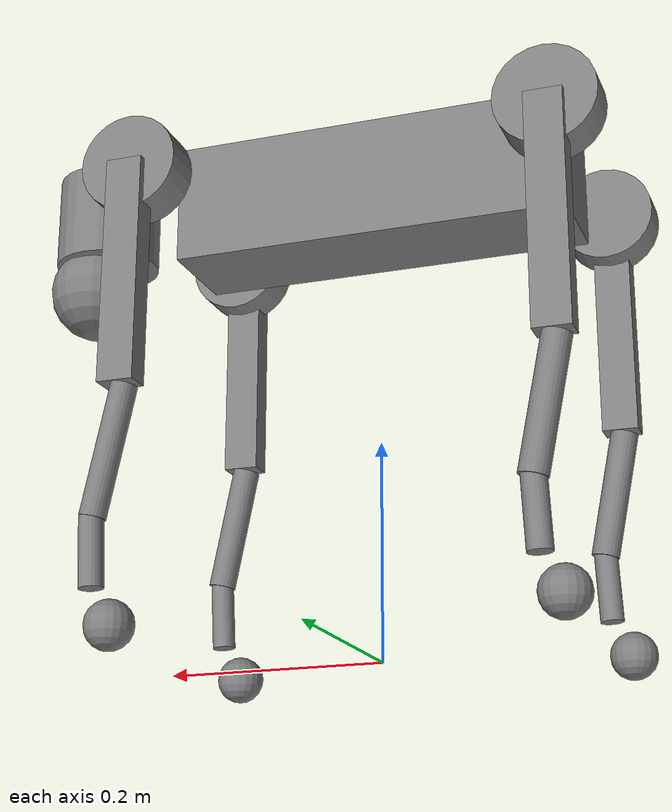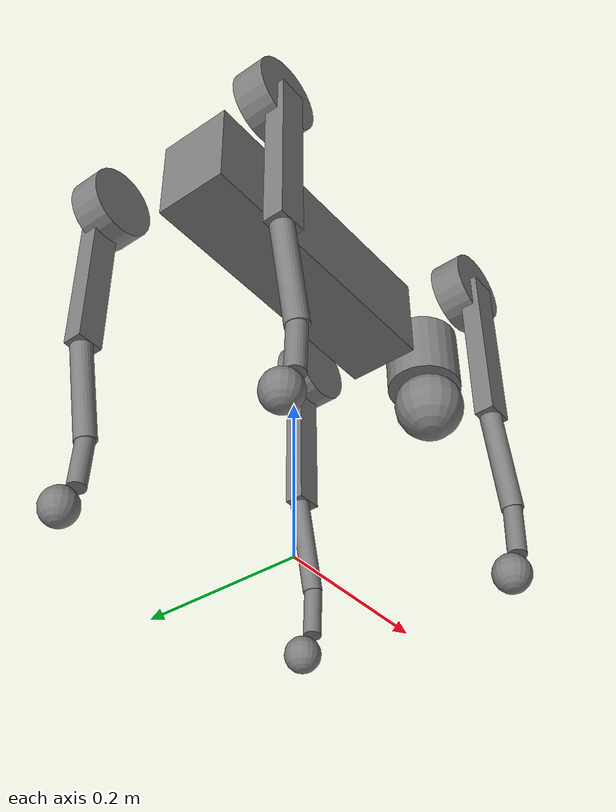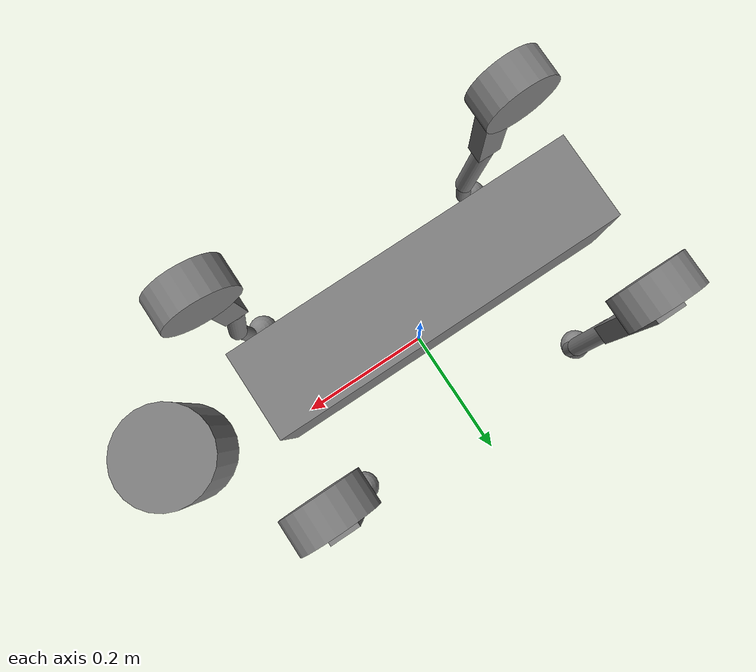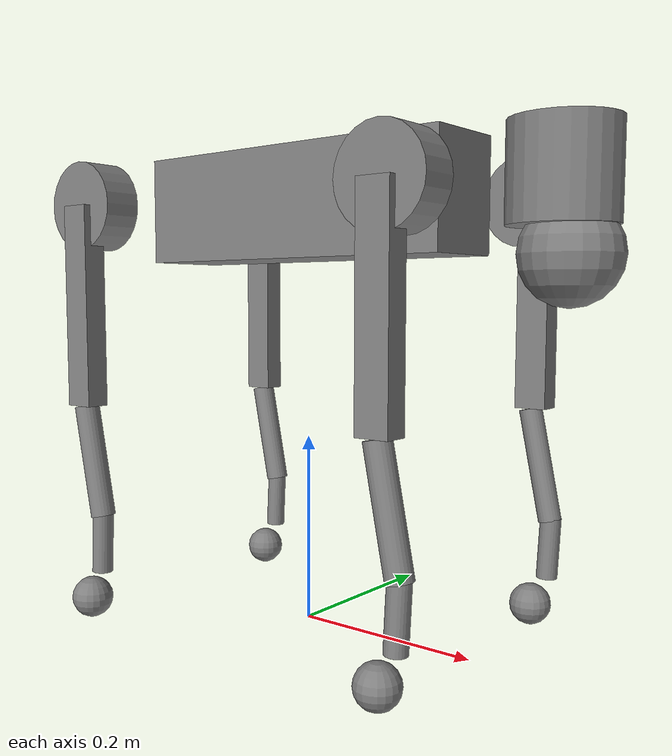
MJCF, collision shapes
<mujoco model="go2">
  <compiler angle="radian" meshdir="../meshes" autolimits="true" />

  <option cone="elliptic" impratio="100" />

  <default>
    <default class="go2">
      <geom friction="0.4" margin="0.001" condim="1" />
      <joint axis="0 1 0" damping="0.1" armature="0.01" frictionloss="0.2" />
      <motor ctrlrange="-23.7 23.7" />
      <default class="abduction">
        <joint axis="1 0 0" range="-1.0472 1.0472" />
      </default>
      <default class="hip">
        <default class="front_hip">
          <joint range="-1.5708 3.4907" />
        </default>
        <default class="back_hip">
          <joint range="-0.5236 4.5379" />
        </default>
      </default>
      <default class="knee">
        <joint range="-2.7227 -0.83776" />
        <motor ctrlrange="-45.43 45.43" />
      </default>
      <default class="visual">
        <geom type="mesh" contype="0" conaffinity="0" density="0" group="2" />
      </default>
      <default class="collision">
        <geom priority="1" condim="6" group="3" />
      </default>
      <site rgba="1 0 0 1" group="5" />
    </default>
  </default>

  <asset>
    <material name="metal" rgba=".9 .95 .95 1" />
    <material name="black" rgba="0 0 0 1" />
    <material name="white" rgba="1 1 1 1" />
    <material name="gray" rgba="0.671705 0.692426 0.774270 1" />

    <mesh file="base_0.obj" />
    <mesh file="base_1.obj" />
    <mesh file="base_2.obj" />
    <mesh file="base_3.obj" />
    <mesh file="base_4.obj" />
    <mesh file="hip_0.obj" />
    <mesh file="hip_1.obj" />
    <mesh file="thigh_0.obj" />
    <mesh file="thigh_1.obj" />
    <mesh file="thigh_mirror_0.obj" />
    <mesh file="thigh_mirror_1.obj" />
    <mesh file="calf_0.obj" />
    <mesh file="calf_1.obj" />
    <mesh file="calf_mirror_0.obj" />
    <mesh file="calf_mirror_1.obj" />
    <mesh file="foot.obj" />
  </asset>

  <worldbody>
    <body name="base_link" pos="0 0 0.445" childclass="go2">
      <inertial pos="0.021112 0 -0.005366" quat="-0.000543471 0.713435 -0.00173769 0.700719" mass="6.921" diaginertia="0.107027 0.0980771 0.0244531" />
      <freejoint name="floating_base_joint" />
      <geom mesh="base_0" material="black" class="visual" />
      <geom mesh="base_1" material="black" class="visual" />
      <geom mesh="base_2" material="black" class="visual" />
      <geom mesh="base_3" material="white" class="visual" />
      <geom mesh="base_4" material="gray" class="visual" />
      <geom name="base1_collision" size="0.1881 0.04675 0.057" type="box" class="collision" />
      <geom name="base2_collision" size="0.05 0.045" pos="0.285 0 0.01" type="cylinder" class="collision" />
      <geom name="base3_collision" size="0.047" pos="0.293 0 -0.06" type="sphere" class="collision" />
      <site name="imu" pos="-0.02557 0 0.04232" group="5" />
      <body name="FL_hip" pos="0.1934 0.0465 0">
        <inertial pos="-0.0054 0.00194 -0.000105" quat="0.497014 0.499245 0.505462 0.498237" mass="0.678" diaginertia="0.00088403 0.000596003 0.000479967" />
        <joint name="FL_hip_joint" axis="1 0 0" range="-1.0472 1.0472" />
        <geom mesh="hip_0" material="metal" class="visual" />
        <geom mesh="hip_1" material="gray" class="visual" />
        <geom name="FL_hip_collision" size="0.046 0.02" pos="0 0.08 0" quat="1 1 0 0" type="cylinder" class="collision" />
        <body name="FL_thigh" pos="0 0.0955 0">
          <inertial pos="-0.00374 -0.0223 -0.0327" quat="0.829533 0.0847635 -0.0200632 0.551623" mass="1.152" diaginertia="0.00594973 0.00584149 0.000878787" />
          <joint name="FL_thigh_joint" axis="0 1 0" range="-1.5708 3.4907" />
          <geom mesh="thigh_0" material="metal" class="visual" />
          <geom mesh="thigh_1" material="gray" class="visual" />
          <geom name="FL_thigh_collision" size="0.1065 0.01225 0.017" pos="0 0 -0.1065" quat="0.707107 0 0.707107 0" type="box" class="collision" />
          <body name="FL_calf" pos="0 0 -0.213">
            <inertial pos="0.00629595 -0.000622121 -0.141417" quat="0.710672 0.00154099 -0.00450087 0.703508" mass="0.241352" diaginertia="0.0014901 0.00146356 5.31397e-05" />
            <joint name="FL_calf_joint" axis="0 1 0" range="-2.7227 -0.83776" />
            <geom mesh="calf_0" material="gray" class="visual" />
            <geom mesh="calf_1" material="black" class="visual" />
            <geom name="FL_calf1_collision" size="0.012 0.06" pos="0.008 0 -0.06" quat="0.994493 0 -0.104807 0" type="cylinder" class="collision" />
            <geom name="FL_calf2_collision" size="0.011 0.0325" pos="0.02 0 -0.148" quat="0.999688 0 0.0249974 0" type="cylinder" class="collision" />
            <geom pos="0 0 -0.213" mesh="foot" class="visual" material="black" />
            <geom name="FL_foot_collision" pos="0 0 -0.213" type="sphere" size="0.022" class="collision" />
            <site name="FL" pos="0 0 -0.213" type="sphere" size="0.022" />
          </body>
        </body>
      </body>
      <body name="FR_hip" pos="0.1934 -0.0465 0">
        <inertial pos="-0.0054 -0.00194 -0.000105" quat="0.498237 0.505462 0.499245 0.497014" mass="0.678" diaginertia="0.00088403 0.000596003 0.000479967" />
        <joint name="FR_hip_joint" axis="1 0 0" range="-1.0472 1.0472" />
        <geom mesh="hip_0" material="metal" class="visual" quat="4.63268e-05 1 0 0" />
        <geom mesh="hip_1" material="gray" class="visual" quat="4.63268e-05 1 0 0" />
        <geom name="FR_hip_collision" size="0.046 0.02" pos="0 -0.08 0" quat="0.707107 0.707107 0 0" type="cylinder" class="collision" />
        <body name="FR_thigh" pos="0 -0.0955 0">
          <inertial pos="-0.00374 0.0223 -0.0327" quat="0.551623 -0.0200632 0.0847635 0.829533" mass="1.152" diaginertia="0.00594973 0.00584149 0.000878787" />
          <joint name="FR_thigh_joint" axis="0 1 0" range="-1.5708 3.4907" />
          <geom mesh="thigh_mirror_0" material="metal" class="visual" />
          <geom mesh="thigh_mirror_1" material="gray" class="visual" />
          <geom name="FR_thigh_collision" size="0.1065 0.01225 0.017" pos="0 0 -0.1065" quat="0.707107 0 0.707107 0" type="box" class="collision" />
          <body name="FR_calf" pos="0 0 -0.213">
            <inertial pos="0.00629595 0.000622121 -0.141417" quat="0.703508 -0.00450087 0.00154099 0.710672" mass="0.241352" diaginertia="0.0014901 0.00146356 5.31397e-05" />
            <joint name="FR_calf_joint" axis="0 1 0" range="-2.7227 -0.83776" />
            <geom mesh="calf_mirror_0" material="gray" class="visual" />
            <geom mesh="calf_mirror_1" material="black" class="visual" />
            <geom name="FR_calf1_collision" size="0.013 0.06" pos="0.01 0 -0.06" quat="0.995004 0 -0.0998334 0" type="cylinder" class="collision" />
            <geom name="FR_calf2_collision" size="0.011 0.0325" pos="0.02 0 -0.148" quat="0.999688 0 0.0249974 0" type="cylinder" class="collision" />
            <geom pos="0 0 -0.213" mesh="foot" class="visual" material="black" />
            <geom name="FR_foot_collision" pos="0 0 -0.213" type="sphere" size="0.022" class="collision" />
            <site name="FR" pos="0 0 -0.213" type="sphere" size="0.022" />
          </body>
        </body>
      </body>
      <body name="RL_hip" pos="-0.1934 0.0465 0">
        <inertial pos="0.0054 0.00194 -0.000105" quat="0.505462 0.498237 0.497014 0.499245" mass="0.678" diaginertia="0.00088403 0.000596003 0.000479967" />
        <joint name="RL_hip_joint" axis="1 0 0" range="-1.0472 1.0472" />
        <geom mesh="hip_0" material="metal" class="visual" quat="4.63268e-05 0 1 0" />
        <geom mesh="hip_1" material="gray" class="visual" quat="4.63268e-05 0 1 0" />
        <geom name="RL_hip_collision" size="0.046 0.02" pos="0 0.08 0" quat="0.707107 0.707107 0 0" type="cylinder" class="collision" />
        <body name="RL_thigh" pos="0 0.0955 0">
          <inertial pos="-0.00374 -0.0223 -0.0327" quat="0.829533 0.0847635 -0.0200632 0.551623" mass="1.152" diaginertia="0.00594973 0.00584149 0.000878787" />
          <joint name="RL_thigh_joint" axis="0 1 0" range="-0.5236 4.5379" />
          <geom mesh="thigh_0" material="metal" class="visual" />
          <geom mesh="thigh_1" material="gray" class="visual" />
          <geom name="RL_thigh_collision" size="0.1065 0.01225 0.017" pos="0 0 -0.1065" quat="0.707107 0 0.707107 0" type="box" class="collision" />
          <body name="RL_calf" pos="0 0 -0.213">
            <inertial pos="0.00629595 -0.000622121 -0.141417" quat="0.710672 0.00154099 -0.00450087 0.703508" mass="0.241352" diaginertia="0.0014901 0.00146356 5.31397e-05" />
            <joint name="RL_calf_joint" axis="0 1 0" range="-2.7227 -0.83776" />
            <geom mesh="calf_0" material="gray" class="visual" />
            <geom mesh="calf_1" material="black" class="visual" />
            <geom name="RL_calf1_collision" size="0.013 0.06" pos="0.01 0 -0.06" quat="0.995004 0 -0.0998334 0" type="cylinder" class="collision" />
            <geom name="RL_calf2_collision" size="0.011 0.0325" pos="0.02 0 -0.148" quat="0.999688 0 0.0249974 0" type="cylinder" class="collision" />
            <geom pos="0 0 -0.213" mesh="foot" class="visual" material="black" />
            <geom name="RL_foot_collision" pos="0 0 -0.213" type="sphere" size="0.022" class="collision" />
            <site name="RL" pos="0 0 -0.213" type="sphere" size="0.022" />
          </body>
        </body>
      </body>
      <body name="RR_hip" pos="-0.1934 -0.0465 0">
        <inertial pos="0.0054 -0.00194 -0.000105" quat="0.499245 0.497014 0.498237 0.505462" mass="0.678" diaginertia="0.00088403 0.000596003 0.000479967" />
        <joint name="RR_hip_joint" axis="1 0 0" range="-1.0472 1.0472" />
        <geom mesh="hip_0" material="metal" class="visual" quat="2.14617e-09 4.63268e-05 4.63268e-05 -1" />
        <geom mesh="hip_1" material="gray" class="visual" quat="2.14617e-09 4.63268e-05 4.63268e-05 -1" />
        <geom name="RR_hip_collision" size="0.046 0.02" pos="0 -0.08 0" quat="0.707107 0.707107 0 0" type="cylinder" class="collision" />
        <body name="RR_thigh" pos="0 -0.0955 0">
          <inertial pos="-0.00374 0.0223 -0.0327" quat="0.551623 -0.0200632 0.0847635 0.829533" mass="1.152" diaginertia="0.00594973 0.00584149 0.000878787" />
          <joint name="RR_thigh_joint" axis="0 1 0" range="-0.5236 4.5379" />
          <geom mesh="thigh_mirror_0" material="metal" class="visual" />
          <geom mesh="thigh_mirror_1" material="gray" class="visual" />
          <geom name="RR_thigh_collision" size="0.1065 0.01225 0.017" pos="0 0 -0.1065" quat="0.707107 0 0.707107 0" type="box" class="collision" />
          <body name="RR_calf" pos="0 0 -0.213">
            <inertial pos="0.00629595 0.000622121 -0.141417" quat="0.703508 -0.00450087 0.00154099 0.710672" mass="0.241352" diaginertia="0.0014901 0.00146356 5.31397e-05" />
            <joint name="RR_calf_joint" axis="0 1 0" range="-2.7227 -0.83776" />
            <geom mesh="calf_mirror_0" material="gray" class="visual" />
            <geom mesh="calf_mirror_1" material="black" class="visual" />
            <geom name="RR_calf1_collision" size="0.013 0.06" pos="0.01 0 -0.06" quat="0.995004 0 -0.0998334 0" type="cylinder" class="collision" />
            <geom name="RR_calf2_collision" size="0.011 0.0325" pos="0.02 0 -0.148" quat="0.999688 0 0.0249974 0" type="cylinder" class="collision" />
            <geom pos="0 0 -0.213" mesh="foot" class="visual" material="black" />
            <geom name="RR_foot_collision" pos="0 0 -0.213" type="sphere" size="0.022" class="collision" />
            <site name="RR" pos="0 0 -0.213" type="sphere" size="0.022" />
          </body>
        </body>
      </body>
    </body>
  </worldbody>

  <actuator>
    <motor class="abduction" name="motor_FR_hip_joint" joint="FR_hip_joint" />
    <motor class="hip" name="motor_FR_thigh_joint" joint="FR_thigh_joint" />
    <motor class="knee" name="motor_FR_calf_joint" joint="FR_calf_joint" />
    <motor class="abduction" name="motor_FL_hip_joint" joint="FL_hip_joint" />
    <motor class="hip" name="motor_FL_thigh_joint" joint="FL_thigh_joint" />
    <motor class="knee" name="motor_FL_calf_joint" joint="FL_calf_joint" />
    <motor class="abduction" name="motor_RR_hip_joint" joint="RR_hip_joint" />
    <motor class="hip" name="motor_RR_thigh_joint" joint="RR_thigh_joint" />
    <motor class="knee" name="motor_RR_calf_joint" joint="RR_calf_joint" />
    <motor class="abduction" name="motor_RL_hip_joint" joint="RL_hip_joint" />
    <motor class="hip" name="motor_RL_thigh_joint" joint="RL_thigh_joint" />
    <motor class="knee" name="motor_RL_calf_joint" joint="RL_calf_joint" />
  </actuator>

  <sensor>
    <jointpos name="jointpos_FR_hip_joint" joint="FR_hip_joint" />
    <jointpos name="jointpos_FR_thigh_joint" joint="FR_thigh_joint" />
    <jointpos name="jointpos_FR_calf_joint" joint="FR_calf_joint" />
    <jointpos name="jointpos_FL_hip_joint" joint="FL_hip_joint" />
    <jointpos name="jointpos_FL_thigh_joint" joint="FL_thigh_joint" />
    <jointpos name="jointpos_FL_calf_joint" joint="FL_calf_joint" />
    <jointpos name="jointpos_RR_hip_joint" joint="RR_hip_joint" />
    <jointpos name="jointpos_RR_thigh_joint" joint="RR_thigh_joint" />
    <jointpos name="jointpos_RR_calf_joint" joint="RR_calf_joint" />
    <jointpos name="jointpos_RL_hip_joint" joint="RL_hip_joint" />
    <jointpos name="jointpos_RL_thigh_joint" joint="RL_thigh_joint" />
    <jointpos name="jointpos_RL_calf_joint" joint="RL_calf_joint" />

    <jointvel name="jointvel_FR_hip_joint" joint="FR_hip_joint" />
    <jointvel name="jointvel_FR_thigh_joint" joint="FR_thigh_joint" />
    <jointvel name="jointvel_FR_calf_joint" joint="FR_calf_joint" />
    <jointvel name="jointvel_FL_hip_joint" joint="FL_hip_joint" />
    <jointvel name="jointvel_FL_thigh_joint" joint="FL_thigh_joint" />
    <jointvel name="jointvel_FL_calf_joint" joint="FL_calf_joint" />
    <jointvel name="jointvel_RR_hip_joint" joint="RR_hip_joint" />
    <jointvel name="jointvel_RR_thigh_joint" joint="RR_thigh_joint" />
    <jointvel name="jointvel_RR_calf_joint" joint="RR_calf_joint" />
    <jointvel name="jointvel_RL_hip_joint" joint="RL_hip_joint" />
    <jointvel name="jointvel_RL_thigh_joint" joint="RL_thigh_joint" />
    <jointvel name="jointvel_RL_calf_joint" joint="RL_calf_joint" />

    <framequat name="body-orientation" objtype="site" objname="imu" />
    <gyro name="body-angular-velocity" site="imu" />
    <accelerometer name="body-linear-acceleration" site="imu" />

    <framepos name="body-linear-pos" objtype="site" objname="imu" />
    <framelinvel name="body-linear-vel" objtype="site" objname="imu" />
  </sensor>

  <keyframe>
    <key name="home" qpos="0 0 0.27 1 0 0 0 0 0.9 -1.8 0 0.9 -1.8 0 0.9 -1.8 0 0.9 -1.8" ctrl="0 0.9 -1.8 0 0.9 -1.8 0 0.9 -1.8 0 0.9 -1.8" />
  </keyframe>
</mujoco>
